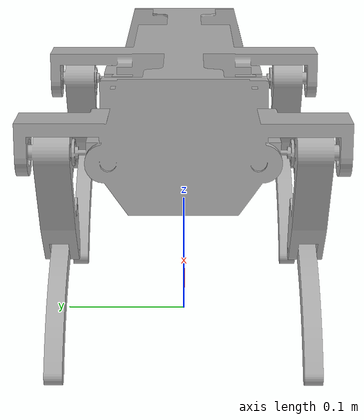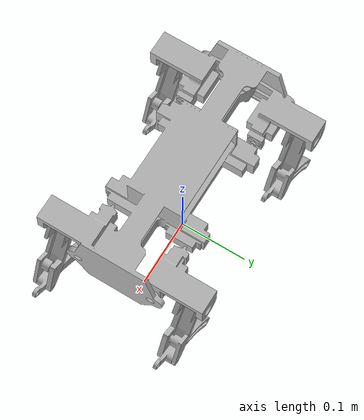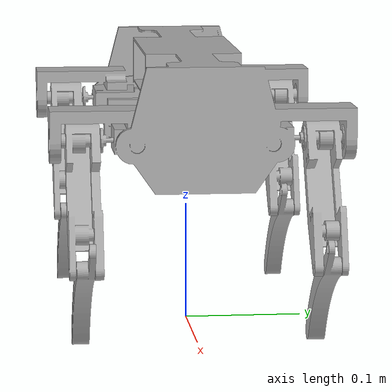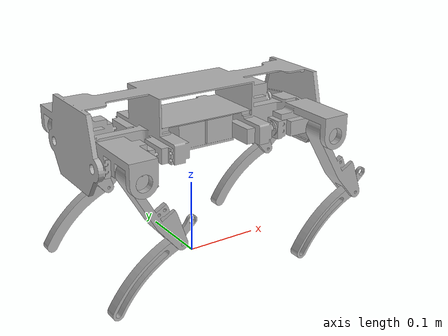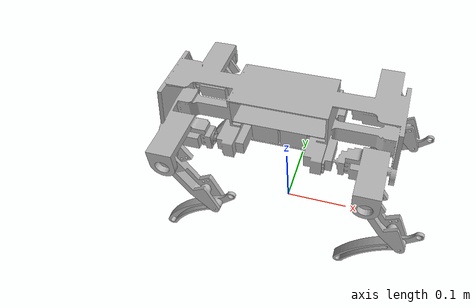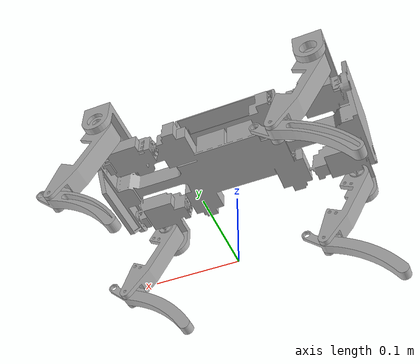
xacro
<?xml version="1.0" ?>
<robot name="Assembly1" xmlns:xacro="http://www.ros.org/wiki/xacro">

<xacro:include filename="$(find Assembly1_description)/urdf/materials.xacro" />
<xacro:include filename="$(find Assembly1_description)/urdf/Assembly1.trans" />
<xacro:include filename="$(find Assembly1_description)/urdf/Assembly1.gazebo" />
<link name="base_link">
  <inertial>
    <origin rpy="0 0 0" xyz="0.0008116968153299715 0.0002710417334023734 0.18385367151920742"/>
    <mass value="1.0586434789147041"/>
    <inertia ixx="0.002833" ixy="-3.4e-05" ixz="2e-06" iyy="0.011841" iyz="1e-06" izz="0.014053"/>
  </inertial>
  <visual>
    <origin rpy="0 0 0" xyz="0 0 0"/>
    <geometry>
      <mesh filename="package://Assembly1_description/meshes/base_link.stl" scale="0.001 0.001 0.001"/>
    </geometry>
    <material name="silver"/>
  </visual>
  <collision>
    <origin rpy="0 0 0" xyz="0 0 0"/>
    <geometry>
      <mesh filename="package://Assembly1_description/meshes/base_link.stl" scale="0.001 0.001 0.001"/>
    </geometry>
  </collision>
</link>

<link name="thigh2_1">
  <inertial>
    <origin rpy="0 0 0" xyz="0.019395259201627088 0.01766021822779701 -0.037794954464271"/>
    <mass value="0.04400791173082409"/>
    <inertia ixx="5.6e-05" ixy="-0.0" ixz="2.8e-05" iyy="7.1e-05" iyz="1e-06" izz="2.3e-05"/>
  </inertial>
  <visual>
    <origin rpy="0 0 0" xyz="0.135632 0.114267 -0.175971"/>
    <geometry>
      <mesh filename="package://Assembly1_description/meshes/thigh2_1.stl" scale="0.001 0.001 0.001"/>
    </geometry>
    <material name="silver"/>
  </visual>
  <collision>
    <origin rpy="0 0 0" xyz="0.135632 0.114267 -0.175971"/>
    <geometry>
      <mesh filename="package://Assembly1_description/meshes/thigh2_1.stl" scale="0.001 0.001 0.001"/>
    </geometry>
  </collision>
</link>

<link name="tibia2_1">
  <inertial>
    <origin rpy="0 0 0" xyz="-0.08107476830557903 0.010611677617225035 -0.06775085724345226"/>
    <mass value="0.021261016618021673"/>
    <inertia ixx="1.4e-05" ixy="-0.0" ixz="-1.6e-05" iyy="3.4e-05" iyz="-0.0" izz="2.1e-05"/>
  </inertial>
  <visual>
    <origin rpy="0 0 0" xyz="0.04037 0.107267 -0.120971"/>
    <geometry>
      <mesh filename="package://Assembly1_description/meshes/tibia2_1.stl" scale="0.001 0.001 0.001"/>
    </geometry>
    <material name="silver"/>
  </visual>
  <collision>
    <origin rpy="0 0 0" xyz="0.04037 0.107267 -0.120971"/>
    <geometry>
      <mesh filename="package://Assembly1_description/meshes/tibia2_1.stl" scale="0.001 0.001 0.001"/>
    </geometry>
  </collision>
</link>

<link name="thigh4_1">
  <inertial>
    <origin rpy="0 0 0" xyz="0.019395260390741104 0.017661130684431675 -0.037794773435430196"/>
    <mass value="0.044007911730823815"/>
    <inertia ixx="5.6e-05" ixy="-0.0" ixz="2.8e-05" iyy="7.1e-05" iyz="1e-06" izz="2.3e-05"/>
  </inertial>
  <visual>
    <origin rpy="0 0 0" xyz="-0.136868 0.113934 -0.175971"/>
    <geometry>
      <mesh filename="package://Assembly1_description/meshes/thigh4_1.stl" scale="0.001 0.001 0.001"/>
    </geometry>
    <material name="silver"/>
  </visual>
  <collision>
    <origin rpy="0 0 0" xyz="-0.136868 0.113934 -0.175971"/>
    <geometry>
      <mesh filename="package://Assembly1_description/meshes/thigh4_1.stl" scale="0.001 0.001 0.001"/>
    </geometry>
  </collision>
</link>

<link name="tibia4_1">
  <inertial>
    <origin rpy="0 0 0" xyz="-0.08107476711646638 0.009612590073858632 -0.06775067621461164"/>
    <mass value="0.021261016618021662"/>
    <inertia ixx="1.4e-05" ixy="-0.0" ixz="-1.6e-05" iyy="3.4e-05" iyz="-0.0" izz="2.1e-05"/>
  </inertial>
  <visual>
    <origin rpy="0 0 0" xyz="-0.23213 0.105934 -0.120971"/>
    <geometry>
      <mesh filename="package://Assembly1_description/meshes/tibia4_1.stl" scale="0.001 0.001 0.001"/>
    </geometry>
    <material name="silver"/>
  </visual>
  <collision>
    <origin rpy="0 0 0" xyz="-0.23213 0.105934 -0.120971"/>
    <geometry>
      <mesh filename="package://Assembly1_description/meshes/tibia4_1.stl" scale="0.001 0.001 0.001"/>
    </geometry>
  </collision>
</link>

<link name="tibia1_1">
  <inertial>
    <origin rpy="0 0 0" xyz="-0.0810747683055447 -0.009611709359822071 -0.06775078849701355"/>
    <mass value="0.0212610166180217"/>
    <inertia ixx="1.4e-05" ixy="0.0" ixz="-1.6e-05" iyy="3.4e-05" iyz="0.0" izz="2.1e-05"/>
  </inertial>
  <visual>
    <origin rpy="0 0 0" xyz="0.04037 -0.106318 -0.121039"/>
    <geometry>
      <mesh filename="package://Assembly1_description/meshes/tibia1_1.stl" scale="0.001 0.001 0.001"/>
    </geometry>
    <material name="silver"/>
  </visual>
  <collision>
    <origin rpy="0 0 0" xyz="0.04037 -0.106318 -0.121039"/>
    <geometry>
      <mesh filename="package://Assembly1_description/meshes/tibia1_1.stl" scale="0.001 0.001 0.001"/>
    </geometry>
  </collision>
</link>

<link name="thigh1_1">
  <inertial>
    <origin rpy="0 0 0" xyz="0.019395259201613058 -0.017660249970393255 -0.03779488571785314"/>
    <mass value="0.04400791173082441"/>
    <inertia ixx="5.6e-05" ixy="0.0" ixz="2.8e-05" iyy="7.1e-05" iyz="-1e-06" izz="2.3e-05"/>
  </inertial>
  <visual>
    <origin rpy="0 0 0" xyz="0.135632 -0.114318 -0.176039"/>
    <geometry>
      <mesh filename="package://Assembly1_description/meshes/thigh1_1.stl" scale="0.001 0.001 0.001"/>
    </geometry>
    <material name="silver"/>
  </visual>
  <collision>
    <origin rpy="0 0 0" xyz="0.135632 -0.114318 -0.176039"/>
    <geometry>
      <mesh filename="package://Assembly1_description/meshes/thigh1_1.stl" scale="0.001 0.001 0.001"/>
    </geometry>
  </collision>
</link>

<link name="thigh3_1">
  <inertial>
    <origin rpy="0 0 0" xyz="0.01939525979132689 -0.017660233651984547 -0.037794952807587046"/>
    <mass value="0.04400791173082455"/>
    <inertia ixx="5.6e-05" ixy="0.0" ixz="2.8e-05" iyy="7.1e-05" iyz="-1e-06" izz="2.3e-05"/>
  </inertial>
  <visual>
    <origin rpy="0 0 0" xyz="-0.136868 -0.114332 -0.175971"/>
    <geometry>
      <mesh filename="package://Assembly1_description/meshes/thigh3_1.stl" scale="0.001 0.001 0.001"/>
    </geometry>
    <material name="silver"/>
  </visual>
  <collision>
    <origin rpy="0 0 0" xyz="-0.136868 -0.114332 -0.175971"/>
    <geometry>
      <mesh filename="package://Assembly1_description/meshes/thigh3_1.stl" scale="0.001 0.001 0.001"/>
    </geometry>
  </collision>
</link>

<link name="tibia3_1">
  <inertial>
    <origin rpy="0 0 0" xyz="-0.08107476771583144 -0.009611693041412323 -0.06775085558674855"/>
    <mass value="0.02126101661802164"/>
    <inertia ixx="1.4e-05" ixy="0.0" ixz="-1.6e-05" iyy="3.4e-05" iyz="0.0" izz="2.1e-05"/>
  </inertial>
  <visual>
    <origin rpy="0 0 0" xyz="-0.23213 -0.106332 -0.120971"/>
    <geometry>
      <mesh filename="package://Assembly1_description/meshes/tibia3_1.stl" scale="0.001 0.001 0.001"/>
    </geometry>
    <material name="silver"/>
  </visual>
  <collision>
    <origin rpy="0 0 0" xyz="-0.23213 -0.106332 -0.120971"/>
    <geometry>
      <mesh filename="package://Assembly1_description/meshes/tibia3_1.stl" scale="0.001 0.001 0.001"/>
    </geometry>
  </collision>
</link>

<joint name="Rev80" type="continuous">
  <origin rpy="0 0 0" xyz="-0.135632 -0.114267 0.175971"/>
  <parent link="base_link"/>
  <child link="thigh2_1"/>
  <axis xyz="0.0 1.0 -0.0"/>
</joint>

<joint name="Rev81" type="continuous">
  <origin rpy="0 0 0" xyz="0.095262 0.007 -0.055"/>
  <parent link="thigh2_1"/>
  <child link="tibia2_1"/>
  <axis xyz="0.0 -1.0 0.0"/>
</joint>

<joint name="Rev82" type="continuous">
  <origin rpy="0 0 0" xyz="0.136868 -0.113934 0.175971"/>
  <parent link="base_link"/>
  <child link="thigh4_1"/>
  <axis xyz="-0.0 -1.0 0.0"/>
</joint>

<joint name="Rev83" type="continuous">
  <origin rpy="0 0 0" xyz="0.095262 0.008 -0.055"/>
  <parent link="thigh4_1"/>
  <child link="tibia4_1"/>
  <axis xyz="0.0 -1.0 0.0"/>
</joint>

<joint name="Rev84" type="continuous">
  <origin rpy="0 0 0" xyz="0.095262 -0.008 -0.055"/>
  <parent link="thigh1_1"/>
  <child link="tibia1_1"/>
  <axis xyz="-0.0 -1.0 0.0"/>
</joint>

<joint name="Rev85" type="continuous">
  <origin rpy="0 0 0" xyz="-0.135632 0.114318 0.176039"/>
  <parent link="base_link"/>
  <child link="thigh1_1"/>
  <axis xyz="0.0 1.0 -0.0"/>
</joint>

<joint name="Rev86" type="continuous">
  <origin rpy="0 0 0" xyz="0.136868 0.114332 0.175971"/>
  <parent link="base_link"/>
  <child link="thigh3_1"/>
  <axis xyz="0.0 -1.0 0.0"/>
</joint>

<joint name="Rev87" type="continuous">
  <origin rpy="0 0 0" xyz="0.095262 -0.008 -0.055"/>
  <parent link="thigh3_1"/>
  <child link="tibia3_1"/>
  <axis xyz="-0.0 -1.0 0.0"/>
</joint>

</robot>

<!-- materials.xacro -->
<robot name="Assembly1" xmlns:xacro="http://www.ros.org/wiki/xacro" >

<material name="silver">
  <color rgba="0.700 0.700 0.700 1.000"/>
</material>

</robot>

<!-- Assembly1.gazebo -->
<robot name="Assembly1" xmlns:xacro="http://www.ros.org/wiki/xacro" >

<xacro:property name="body_color" value="Gazebo/Silver" />

<gazebo>
  <plugin filename="libgazebo_ros_control.so" name="control"/>
</gazebo>
<gazebo reference="base_link">
  <material>${body_color}</material>
  <mu1>0.2</mu1>
  <mu2>0.2</mu2>
  <selfCollide>true</selfCollide>
  <gravity>true</gravity>
</gazebo>

<gazebo reference="thigh2_1">
  <material>${body_color}</material>
  <mu1>0.2</mu1>
  <mu2>0.2</mu2>
  <selfCollide>true</selfCollide>
</gazebo>

<gazebo reference="tibia2_1">
  <material>${body_color}</material>
  <mu1>0.2</mu1>
  <mu2>0.2</mu2>
  <selfCollide>true</selfCollide>
</gazebo>

<gazebo reference="thigh4_1">
  <material>${body_color}</material>
  <mu1>0.2</mu1>
  <mu2>0.2</mu2>
  <selfCollide>true</selfCollide>
</gazebo>

<gazebo reference="tibia4_1">
  <material>${body_color}</material>
  <mu1>0.2</mu1>
  <mu2>0.2</mu2>
  <selfCollide>true</selfCollide>
</gazebo>

<gazebo reference="tibia1_1">
  <material>${body_color}</material>
  <mu1>0.2</mu1>
  <mu2>0.2</mu2>
  <selfCollide>true</selfCollide>
</gazebo>

<gazebo reference="thigh1_1">
  <material>${body_color}</material>
  <mu1>0.2</mu1>
  <mu2>0.2</mu2>
  <selfCollide>true</selfCollide>
</gazebo>

<gazebo reference="thigh3_1">
  <material>${body_color}</material>
  <mu1>0.2</mu1>
  <mu2>0.2</mu2>
  <selfCollide>true</selfCollide>
</gazebo>

<gazebo reference="tibia3_1">
  <material>${body_color}</material>
  <mu1>0.2</mu1>
  <mu2>0.2</mu2>
  <selfCollide>true</selfCollide>
</gazebo>

</robot>
